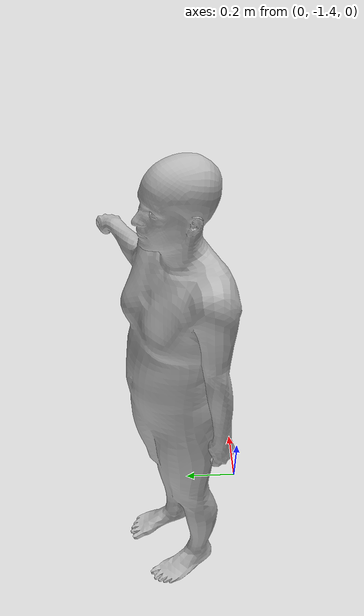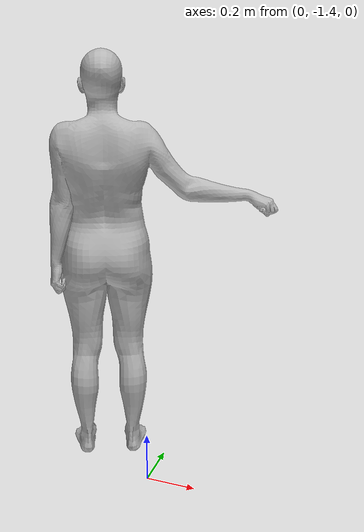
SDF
<?xml version="1.0"?>
<sdf version="1.10">
  <model name="smplx_operator">
    <static>true</static>
    <pose>-0.283 -1.127 0 0 0 3.55</pose>
    <link name="body">
      <visual name="smplx_body_visual">
        <pose>0 0 1.26 1.5708 0 0</pose>
        <geometry>
          <mesh>
            <uri>model://smplx_operator/meshes/smplx_operator.obj</uri>
            <scale>1 1 1</scale>
          </mesh>
        </geometry>
      </visual>
      <collision name="torso_proxy_collision">
        <pose>0 0 1.0 0 0 0</pose>
        <geometry>
          <box>
            <size>0.36 0.22 0.72</size>
          </box>
        </geometry>
      </collision>
      <collision name="head_proxy_collision">
        <pose>0 0 1.55 0 0 0</pose>
        <geometry>
          <sphere>
            <radius>0.12</radius>
          </sphere>
        </geometry>
      </collision>
    </link>
  </model>
</sdf>
